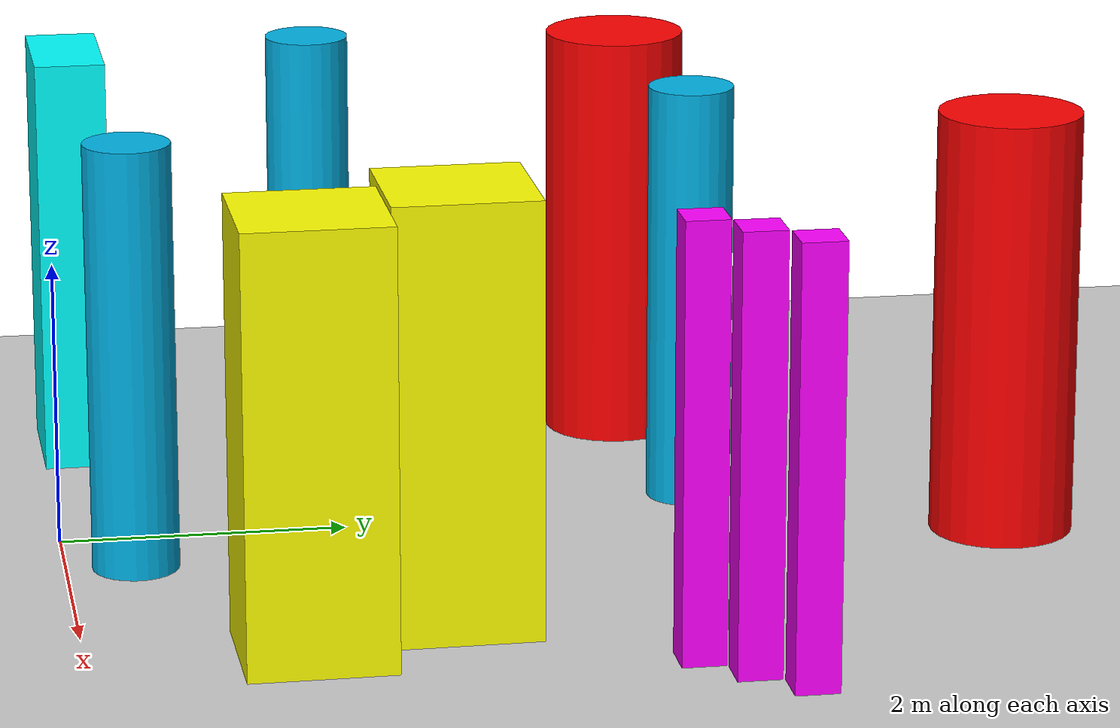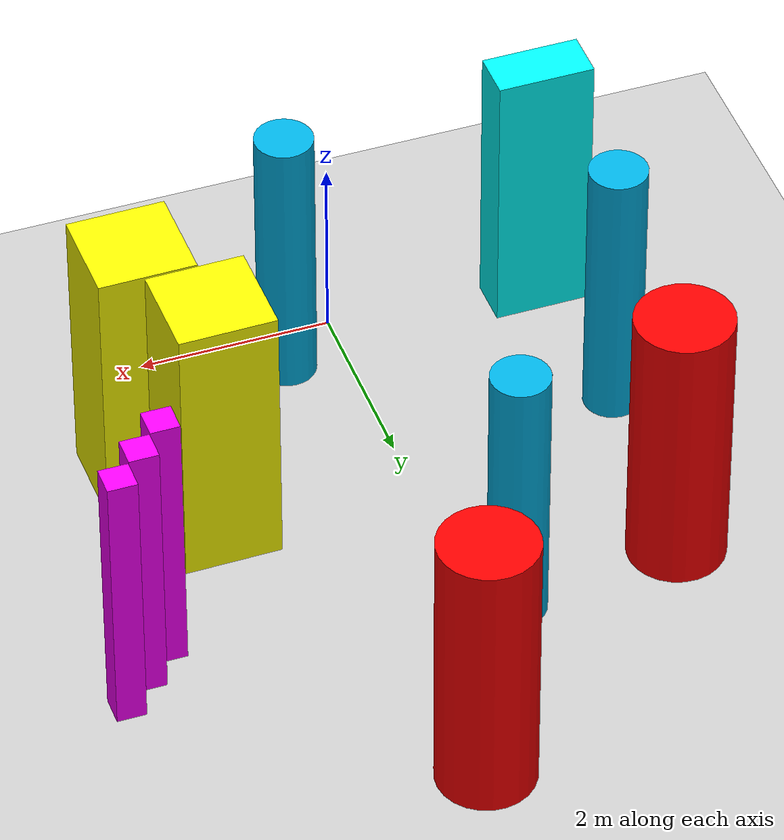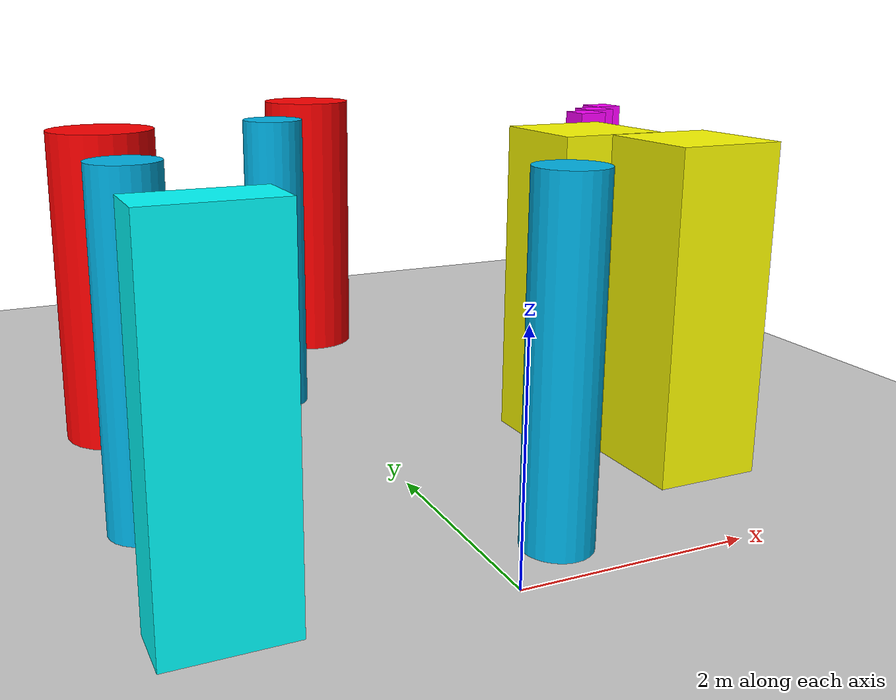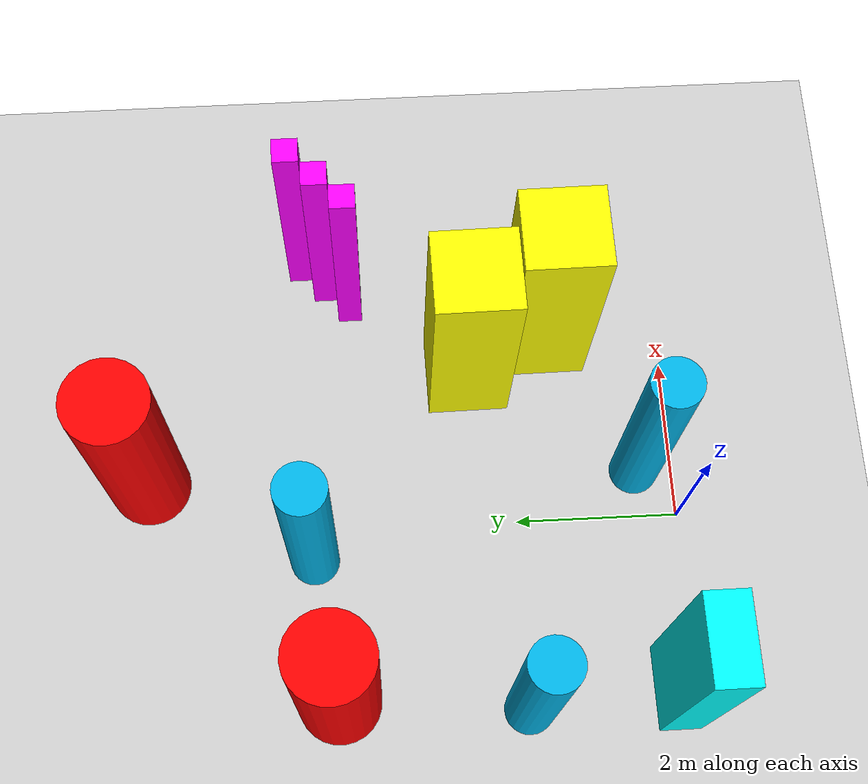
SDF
<sdf version="1.6">
 <world name="default">
  <model name="ground_plane">
   <static>1</static>
   <link name="link">
    <collision name="collision">
     <geometry><plane><normal>0 0 1</normal><size>100 100</size></plane></geometry>
     <surface><friction><ode><mu>100</mu><mu2>50</mu2></ode></friction></surface>
    </collision>
    <visual name="visual">
     <cast_shadows>0</cast_shadows>
     <geometry><plane><normal>0 0 1</normal><size>100 100</size></plane></geometry>
     <material>
      <script><uri>file://media/materials/scripts/gazebo.material</uri><name>Gazebo/Grey</name></script>
     </material>
    </visual>
   </link>
  </model>
  <model name="orange_tall_box">
   <link name="link">
    <pose>-0.180811 0.689421 1.5 0 -0 0</pose>
    <inertial>
     <mass>100</mass>
     <inertia>
      <ixx>0.166667</ixx>
      <ixy>0</ixy>
      <ixz>0</ixz>
      <iyy>0.166667</iyy>
      <iyz>0</iyz>
      <izz>0.166667</izz>
     </inertia>
    </inertial>
    <visual name="visual">
     <geometry><box><size>1 1 3</size></box></geometry>
     <material>
      <script><name>Gazebo/Grey</name><uri>file://media/materials/scripts/gazebo.material</uri></script>
      <shader type="pixel"><normal_map>__default__</normal_map></shader>
      <ambient>1 1 0 1</ambient>
      <diffuse>1 1 0 1</diffuse>
      <specular>0.5 0.5 0 1</specular>
      <emissive>0 0 0 1</emissive>
     </material>
    </visual>
    <collision name="collision">
     <geometry><box><size>1 1 3</size></box></geometry>
     <surface>
      <friction>
       <ode><mu>1</mu><mu2>1</mu2><fdir1>0 0 0</fdir1><slip1>0</slip1><slip2>0</slip2></ode>
       <torsional>
        <coefficient>1</coefficient>
        <patch_radius>0</patch_radius>
        <surface_radius>0</surface_radius>
        <use_patch_radius>1</use_patch_radius>
        <ode><slip>0</slip></ode>
       </torsional>
      </friction>
      <bounce><restitution_coefficient>0</restitution_coefficient><threshold>1e+06</threshold></bounce>
      <contact>
       <collide_without_contact>0</collide_without_contact>
       <collide_without_contact_bitmask>1</collide_without_contact_bitmask>
       <collide_bitmask>1</collide_bitmask>
       <ode>
        <soft_cfm>0</soft_cfm>
        <soft_erp>0.2</soft_erp>
        <kp>1e+13</kp>
        <kd>1</kd>
        <max_vel>0.01</max_vel>
        <min_depth>0</min_depth>
       </ode>
       <bullet>
        <split_impulse>1</split_impulse>
        <split_impulse_penetration_threshold>-0.01</split_impulse_penetration_threshold>
        <soft_cfm>0</soft_cfm>
        <soft_erp>0.2</soft_erp>
        <kp>1e+13</kp>
        <kd>1</kd>
       </bullet>
      </contact>
     </surface>
    </collision>
   </link>
   <static>0</static>
   <pose>2.20981 1.82485 -9e-06 -0 1.2e-05 0.01223</pose>
  </model>
  <model name="tall_fat_red_cyl">
   <link name="link">
    <pose>0 0 1.5 0 -0 0</pose>
    <inertial>
     <mass>100</mass>
     <inertia><ixx>0.145833</ixx><ixy>0</ixy><ixz>0</ixz><iyy>0.145833</iyy><iyz>0</iyz><izz>0.125</izz></inertia>
    </inertial>
    <visual name="visual">
     <geometry><cylinder><radius>0.5</radius><length>3</length></cylinder></geometry>
     <material>
      <script><name>Gazebo/Grey</name><uri>file://media/materials/scripts/gazebo.material</uri></script>
      <shader type="pixel"><normal_map>__default__</normal_map></shader>
      <ambient>1 0 0 1</ambient>
      <diffuse>1 0 0 1</diffuse>
      <specular>0.5 0 0 1</specular>
      <emissive>0 0 0 1</emissive>
     </material>
    </visual>
    <collision name="collision">
     <geometry><cylinder><radius>0.5</radius><length>3</length></cylinder></geometry>
     <surface>
      <friction>
       <ode><mu>1</mu><mu2>1</mu2><fdir1>0 0 0</fdir1><slip1>0</slip1><slip2>0</slip2></ode>
       <torsional>
        <coefficient>1</coefficient>
        <patch_radius>0</patch_radius>
        <surface_radius>0</surface_radius>
        <use_patch_radius>1</use_patch_radius>
        <ode><slip>0</slip></ode>
       </torsional>
      </friction>
      <bounce><restitution_coefficient>0</restitution_coefficient><threshold>1e+06</threshold></bounce>
      <contact>
       <collide_without_contact>0</collide_without_contact>
       <collide_without_contact_bitmask>1</collide_without_contact_bitmask>
       <collide_bitmask>1</collide_bitmask>
       <ode>
        <soft_cfm>0</soft_cfm>
        <soft_erp>0.2</soft_erp>
        <kp>1e+13</kp>
        <kd>1</kd>
        <max_vel>0.01</max_vel>
        <min_depth>0</min_depth>
       </ode>
       <bullet>
        <split_impulse>1</split_impulse>
        <split_impulse_penetration_threshold>-0.01</split_impulse_penetration_threshold>
        <soft_cfm>0</soft_cfm>
        <soft_erp>0.2</soft_erp>
        <kp>1e+13</kp>
        <kd>1</kd>
       </bullet>
      </contact>
     </surface>
    </collision>
   </link>
   <static>0</static>
   <pose>0.691746 6.54631 -1e-06 5e-06 6e-06 0.051233</pose>
  </model>
  <model name="orange_tall_box_clone">
   <link name="link">
    <pose>-0.180811 0.689421 1.5 0 -0 0</pose>
    <inertial>
     <mass>100</mass>
     <inertia>
      <ixx>0.166667</ixx>
      <ixy>0</ixy>
      <ixz>0</ixz>
      <iyy>0.166667</iyy>
      <iyz>0</iyz>
      <izz>0.166667</izz>
     </inertia>
    </inertial>
    <visual name="visual">
     <geometry><box><size>1 1 3</size></box></geometry>
     <material>
      <script><name>Gazebo/Grey</name><uri>file://media/materials/scripts/gazebo.material</uri></script>
      <shader type="pixel"><normal_map>__default__</normal_map></shader>
      <ambient>1 1 0 1</ambient>
      <diffuse>1 1 0 1</diffuse>
      <specular>0.5 0.5 0 1</specular>
      <emissive>0 0 0 1</emissive>
     </material>
    </visual>
    <collision name="collision">
     <geometry><box><size>1 1 3</size></box></geometry>
     <surface>
      <friction>
       <ode><mu>1</mu><mu2>1</mu2><fdir1>0 0 0</fdir1><slip1>0</slip1><slip2>0</slip2></ode>
       <torsional>
        <coefficient>1</coefficient>
        <patch_radius>0</patch_radius>
        <surface_radius>0</surface_radius>
        <use_patch_radius>1</use_patch_radius>
        <ode><slip>0</slip></ode>
       </torsional>
      </friction>
      <bounce><restitution_coefficient>0</restitution_coefficient><threshold>1e+06</threshold></bounce>
      <contact>
       <collide_without_contact>0</collide_without_contact>
       <collide_without_contact_bitmask>1</collide_without_contact_bitmask>
       <collide_bitmask>1</collide_bitmask>
       <ode>
        <soft_cfm>0</soft_cfm>
        <soft_erp>0.2</soft_erp>
        <kp>1e+13</kp>
        <kd>1</kd>
        <max_vel>0.01</max_vel>
        <min_depth>0</min_depth>
       </ode>
       <bullet>
        <split_impulse>1</split_impulse>
        <split_impulse_penetration_threshold>-0.01</split_impulse_penetration_threshold>
        <soft_cfm>0</soft_cfm>
        <soft_erp>0.2</soft_erp>
        <kp>1e+13</kp>
        <kd>1</kd>
       </bullet>
      </contact>
     </surface>
    </collision>
   </link>
   <static>0</static>
   <pose>1.80373 1.30672 -9e-06 -1e-06 1.2e-05 -1.5612</pose>
  </model>
  <model name="cyl_tall_green_clone">
   <link name="link">
    <inertial>
     <mass>1</mass>
     <inertia><ixx>0.145833</ixx><ixy>0</ixy><ixz>0</ixz><iyy>0.145833</iyy><iyz>0</iyz><izz>0.125</izz></inertia>
    </inertial>
    <visual name="visual">
     <geometry><cylinder><radius>0.3</radius><length>3</length></cylinder></geometry>
     <material>
      <script><name>Gazebo/Grey</name><uri>file://media/materials/scripts/gazebo.material</uri></script>
      <shader type="pixel"><normal_map>__default__</normal_map></shader>
      <ambient>0 1 1 1</ambient>
      <diffuse>0 0.7 0.9 1</diffuse>
      <specular>0 0.01 0.03 1</specular>
      <emissive>0 0 0 1</emissive>
     </material>
    </visual>
    <collision name="collision">
     <geometry><cylinder><radius>0.3</radius><length>3</length></cylinder></geometry>
     <surface>
      <friction>
       <ode><mu>1</mu><mu2>1</mu2><fdir1>0 0 0</fdir1><slip1>0</slip1><slip2>0</slip2></ode>
       <torsional>
        <coefficient>1</coefficient>
        <patch_radius>0</patch_radius>
        <surface_radius>0</surface_radius>
        <use_patch_radius>1</use_patch_radius>
        <ode><slip>0</slip></ode>
       </torsional>
      </friction>
      <bounce><restitution_coefficient>0</restitution_coefficient><threshold>1e+06</threshold></bounce>
      <contact>
       <collide_without_contact>0</collide_without_contact>
       <collide_without_contact_bitmask>1</collide_without_contact_bitmask>
       <collide_bitmask>1</collide_bitmask>
       <ode>
        <soft_cfm>0</soft_cfm>
        <soft_erp>0.2</soft_erp>
        <kp>1e+13</kp>
        <kd>1</kd>
        <max_vel>0.01</max_vel>
        <min_depth>0</min_depth>
       </ode>
       <bullet>
        <split_impulse>1</split_impulse>
        <split_impulse_penetration_threshold>-0.01</split_impulse_penetration_threshold>
        <soft_cfm>0</soft_cfm>
        <soft_erp>0.2</soft_erp>
        <kp>1e+13</kp>
        <kd>1</kd>
       </bullet>
      </contact>
     </surface>
    </collision>
   </link>
   <static>0</static>
   <pose>0.600657 0.482827 1.5 0 0 -2.15732</pose>
  </model>
  <model name="tall_fat_red_cyl_clone">
   <link name="link">
    <pose>0 0 1.5 0 -0 0</pose>
    <inertial>
     <mass>100</mass>
     <inertia><ixx>0.145833</ixx><ixy>0</ixy><ixz>0</ixz><iyy>0.145833</iyy><iyz>0</iyz><izz>0.125</izz></inertia>
    </inertial>
    <visual name="visual">
     <geometry><cylinder><radius>0.5</radius><length>3</length></cylinder></geometry>
     <material>
      <script><name>Gazebo/Grey</name><uri>file://media/materials/scripts/gazebo.material</uri></script>
      <shader type="pixel"><normal_map>__default__</normal_map></shader>
      <ambient>1 0 0 1</ambient>
      <diffuse>1 0 0 1</diffuse>
      <specular>0.5 0 0 1</specular>
      <emissive>0 0 0 1</emissive>
     </material>
    </visual>
    <collision name="collision">
     <geometry><cylinder><radius>0.5</radius><length>3</length></cylinder></geometry>
     <surface>
      <friction>
       <ode><mu>1</mu><mu2>1</mu2><fdir1>0 0 0</fdir1><slip1>0</slip1><slip2>0</slip2></ode>
       <torsional>
        <coefficient>1</coefficient>
        <patch_radius>0</patch_radius>
        <surface_radius>0</surface_radius>
        <use_patch_radius>1</use_patch_radius>
        <ode><slip>0</slip></ode>
       </torsional>
      </friction>
      <bounce><restitution_coefficient>0</restitution_coefficient><threshold>1e+06</threshold></bounce>
      <contact>
       <collide_without_contact>0</collide_without_contact>
       <collide_without_contact_bitmask>1</collide_without_contact_bitmask>
       <collide_bitmask>1</collide_bitmask>
       <ode>
        <soft_cfm>0</soft_cfm>
        <soft_erp>0.2</soft_erp>
        <kp>1e+13</kp>
        <kd>1</kd>
        <max_vel>0.01</max_vel>
        <min_depth>0</min_depth>
       </ode>
       <bullet>
        <split_impulse>1</split_impulse>
        <split_impulse_penetration_threshold>-0.01</split_impulse_penetration_threshold>
        <soft_cfm>0</soft_cfm>
        <soft_erp>0.2</soft_erp>
        <kp>1e+13</kp>
        <kd>1</kd>
       </bullet>
      </contact>
     </surface>
    </collision>
   </link>
   <static>0</static>
   <pose>-2.12739 4.27453 -8e-06 4e-06 6e-06 0.067253</pose>
  </model>
  <model name="tall_narrow_cyan_box">
   <link name="link">
    <pose>0 -0 1.5 0 -0 0</pose>
    <inertial>
     <mass>1</mass>
     <inertia>
      <ixx>0.166667</ixx>
      <ixy>0</ixy>
      <ixz>0</ixz>
      <iyy>0.166667</iyy>
      <iyz>0</iyz>
      <izz>0.166667</izz>
     </inertia>
    </inertial>
    <visual name="visual">
     <geometry><box><size>1 0.5 3</size></box></geometry>
     <material>
      <script><name>Gazebo/Grey</name><uri>file://media/materials/scripts/gazebo.material</uri></script>
      <shader type="pixel"><normal_map>__default__</normal_map></shader>
      <ambient>0.3 1 1 1</ambient>
      <diffuse>0 1 1 1</diffuse>
      <specular>0 0.5 0.5 1</specular>
      <emissive>0 0 0 1</emissive>
     </material>
    </visual>
    <collision name="collision">
     <geometry><box><size>1 0.5 3</size></box></geometry>
     <surface>
      <friction>
       <ode><mu>1</mu><mu2>1</mu2><fdir1>0 0 0</fdir1><slip1>0</slip1><slip2>0</slip2></ode>
       <torsional>
        <coefficient>1</coefficient>
        <patch_radius>0</patch_radius>
        <surface_radius>0</surface_radius>
        <use_patch_radius>1</use_patch_radius>
        <ode><slip>0</slip></ode>
       </torsional>
      </friction>
      <bounce><restitution_coefficient>0</restitution_coefficient><threshold>1e+06</threshold></bounce>
      <contact>
       <collide_without_contact>0</collide_without_contact>
       <collide_without_contact_bitmask>1</collide_without_contact_bitmask>
       <collide_bitmask>1</collide_bitmask>
       <ode>
        <soft_cfm>0</soft_cfm>
        <soft_erp>0.2</soft_erp>
        <kp>1e+13</kp>
        <kd>1</kd>
        <max_vel>0.01</max_vel>
        <min_depth>0</min_depth>
       </ode>
       <bullet>
        <split_impulse>1</split_impulse>
        <split_impulse_penetration_threshold>-0.01</split_impulse_penetration_threshold>
        <soft_cfm>0</soft_cfm>
        <soft_erp>0.2</soft_erp>
        <kp>1e+13</kp>
        <kd>1</kd>
       </bullet>
      </contact>
     </surface>
    </collision>
   </link>
   <static>0</static>
   <pose>-2.1456 0.258525 0 0 0 -3.1377</pose>
  </model>
  <model name="tall_skinny_purple_box">
   <link name="link">
    <pose>0 0 1.5 0 -0 0</pose>
    <inertial>
     <mass>1</mass>
     <inertia>
      <ixx>0.166667</ixx>
      <ixy>0</ixy>
      <ixz>0</ixz>
      <iyy>0.166667</iyy>
      <iyz>0</iyz>
      <izz>0.166667</izz>
     </inertia>
    </inertial>
    <visual name="visual">
     <geometry><box><size>0.3 0.3 3</size></box></geometry>
     <material>
      <script><name>Gazebo/Grey</name><uri>file://media/materials/scripts/gazebo.material</uri></script>
      <shader type="pixel"><normal_map>__default__</normal_map></shader>
      <ambient>1 0 1 1</ambient>
      <diffuse>1 0 1 1</diffuse>
      <specular>0.5 0 0.5 1</specular>
      <emissive>0 0 0 1</emissive>
     </material>
    </visual>
    <collision name="collision">
     <geometry><box><size>0.3 0.3 3</size></box></geometry>
     <surface>
      <friction>
       <ode><mu>1</mu><mu2>1</mu2><fdir1>0 0 0</fdir1><slip1>0</slip1><slip2>0</slip2></ode>
       <torsional>
        <coefficient>1</coefficient>
        <patch_radius>0</patch_radius>
        <surface_radius>0</surface_radius>
        <use_patch_radius>1</use_patch_radius>
        <ode><slip>0</slip></ode>
       </torsional>
      </friction>
      <bounce><restitution_coefficient>0</restitution_coefficient><threshold>1e+06</threshold></bounce>
      <contact>
       <collide_without_contact>0</collide_without_contact>
       <collide_without_contact_bitmask>1</collide_without_contact_bitmask>
       <collide_bitmask>1</collide_bitmask>
       <ode>
        <soft_cfm>0</soft_cfm>
        <soft_erp>0.2</soft_erp>
        <kp>1e+13</kp>
        <kd>1</kd>
        <max_vel>0.01</max_vel>
        <min_depth>0</min_depth>
       </ode>
       <bullet>
        <split_impulse>1</split_impulse>
        <split_impulse_penetration_threshold>-0.01</split_impulse_penetration_threshold>
        <soft_cfm>0</soft_cfm>
        <soft_erp>0.2</soft_erp>
        <kp>1e+13</kp>
        <kd>1</kd>
       </bullet>
      </contact>
     </surface>
    </collision>
   </link>
   <static>0</static>
   <pose>3.00096 3.95939 0 1e-06 -1e-06 0.000711</pose>
  </model>
  <model name="cyl_tall_green_clone_0">
   <link name="link">
    <inertial>
     <mass>1</mass>
     <inertia><ixx>0.145833</ixx><ixy>0</ixy><ixz>0</ixz><iyy>0.145833</iyy><iyz>0</iyz><izz>0.125</izz></inertia>
    </inertial>
    <visual name="visual">
     <geometry><cylinder><radius>0.3</radius><length>3</length></cylinder></geometry>
     <material>
      <script><name>Gazebo/Grey</name><uri>file://media/materials/scripts/gazebo.material</uri></script>
      <shader type="pixel"><normal_map>__default__</normal_map></shader>
      <ambient>0 1 1 1</ambient>
      <diffuse>0 0.7 0.9 1</diffuse>
      <specular>0 0.01 0.03 1</specular>
      <emissive>0 0 0 1</emissive>
     </material>
    </visual>
    <collision name="collision">
     <geometry><cylinder><radius>0.3</radius><length>3</length></cylinder></geometry>
     <surface>
      <friction>
       <ode><mu>1</mu><mu2>1</mu2><fdir1>0 0 0</fdir1><slip1>0</slip1><slip2>0</slip2></ode>
       <torsional>
        <coefficient>1</coefficient>
        <patch_radius>0</patch_radius>
        <surface_radius>0</surface_radius>
        <use_patch_radius>1</use_patch_radius>
        <ode><slip>0</slip></ode>
       </torsional>
      </friction>
      <bounce><restitution_coefficient>0</restitution_coefficient><threshold>1e+06</threshold></bounce>
      <contact>
       <collide_without_contact>0</collide_without_contact>
       <collide_without_contact_bitmask>1</collide_without_contact_bitmask>
       <collide_bitmask>1</collide_bitmask>
       <ode>
        <soft_cfm>0</soft_cfm>
        <soft_erp>0.2</soft_erp>
        <kp>1e+13</kp>
        <kd>1</kd>
        <max_vel>0.01</max_vel>
        <min_depth>0</min_depth>
       </ode>
       <bullet>
        <split_impulse>1</split_impulse>
        <split_impulse_penetration_threshold>-0.01</split_impulse_penetration_threshold>
        <soft_cfm>0</soft_cfm>
        <soft_erp>0.2</soft_erp>
        <kp>1e+13</kp>
        <kd>1</kd>
       </bullet>
      </contact>
     </surface>
    </collision>
   </link>
   <static>0</static>
   <pose>-2.31821 2.02794 1.5 0 -0 0.000695</pose>
  </model>
  <model name="cyl_tall_green_clone_1">
   <link name="link">
    <inertial>
     <mass>1</mass>
     <inertia><ixx>0.145833</ixx><ixy>0</ixy><ixz>0</ixz><iyy>0.145833</iyy><iyz>0</iyz><izz>0.125</izz></inertia>
    </inertial>
    <visual name="visual">
     <geometry><cylinder><radius>0.3</radius><length>3</length></cylinder></geometry>
     <material>
      <script><name>Gazebo/Grey</name><uri>file://media/materials/scripts/gazebo.material</uri></script>
      <shader type="pixel"><normal_map>__default__</normal_map></shader>
      <ambient>0 1 1 1</ambient>
      <diffuse>0 0.7 0.9 1</diffuse>
      <specular>0 0.01 0.03 1</specular>
      <emissive>0 0 0 1</emissive>
     </material>
    </visual>
    <collision name="collision">
     <geometry><cylinder><radius>0.3</radius><length>3</length></cylinder></geometry>
     <surface>
      <friction>
       <ode><mu>1</mu><mu2>1</mu2><fdir1>0 0 0</fdir1><slip1>0</slip1><slip2>0</slip2></ode>
       <torsional>
        <coefficient>1</coefficient>
        <patch_radius>0</patch_radius>
        <surface_radius>0</surface_radius>
        <use_patch_radius>1</use_patch_radius>
        <ode><slip>0</slip></ode>
       </torsional>
      </friction>
      <bounce><restitution_coefficient>0</restitution_coefficient><threshold>1e+06</threshold></bounce>
      <contact>
       <collide_without_contact>0</collide_without_contact>
       <collide_without_contact_bitmask>1</collide_without_contact_bitmask>
       <collide_bitmask>1</collide_bitmask>
       <ode>
        <soft_cfm>0</soft_cfm>
        <soft_erp>0.2</soft_erp>
        <kp>1e+13</kp>
        <kd>1</kd>
        <max_vel>0.01</max_vel>
        <min_depth>0</min_depth>
       </ode>
       <bullet>
        <split_impulse>1</split_impulse>
        <split_impulse_penetration_threshold>-0.01</split_impulse_penetration_threshold>
        <soft_cfm>0</soft_cfm>
        <soft_erp>0.2</soft_erp>
        <kp>1e+13</kp>
        <kd>1</kd>
       </bullet>
      </contact>
     </surface>
    </collision>
   </link>
   <static>0</static>
   <pose>-0.374964 4.5172 1.49999 0 -0 0.000696</pose>
  </model>
  <model name="tall_skinny_purple_box_clone_1">
   <link name="link">
    <pose>0 0 1.5 0 -0 0</pose>
    <inertial>
     <mass>1</mass>
     <inertia>
      <ixx>0.166667</ixx>
      <ixy>0</ixy>
      <ixz>0</ixz>
      <iyy>0.166667</iyy>
      <iyz>0</iyz>
      <izz>0.166667</izz>
     </inertia>
    </inertial>
    <visual name="visual">
     <geometry><box><size>0.3 0.3 3</size></box></geometry>
     <material>
      <script><name>Gazebo/Grey</name><uri>file://media/materials/scripts/gazebo.material</uri></script>
      <shader type="pixel"><normal_map>__default__</normal_map></shader>
      <ambient>1 0 1 1</ambient>
      <diffuse>1 0 1 1</diffuse>
      <specular>0.5 0 0.5 1</specular>
      <emissive>0 0 0 1</emissive>
     </material>
    </visual>
    <collision name="collision">
     <geometry><box><size>0.3 0.3 3</size></box></geometry>
     <surface>
      <friction>
       <ode><mu>1</mu><mu2>1</mu2><fdir1>0 0 0</fdir1><slip1>0</slip1><slip2>0</slip2></ode>
       <torsional>
        <coefficient>1</coefficient>
        <patch_radius>0</patch_radius>
        <surface_radius>0</surface_radius>
        <use_patch_radius>1</use_patch_radius>
        <ode><slip>0</slip></ode>
       </torsional>
      </friction>
      <bounce><restitution_coefficient>0</restitution_coefficient><threshold>1e+06</threshold></bounce>
      <contact>
       <collide_without_contact>0</collide_without_contact>
       <collide_without_contact_bitmask>1</collide_without_contact_bitmask>
       <collide_bitmask>1</collide_bitmask>
       <ode>
        <soft_cfm>0</soft_cfm>
        <soft_erp>0.2</soft_erp>
        <kp>1e+13</kp>
        <kd>1</kd>
        <max_vel>0.01</max_vel>
        <min_depth>0</min_depth>
       </ode>
       <bullet>
        <split_impulse>1</split_impulse>
        <split_impulse_penetration_threshold>-0.01</split_impulse_penetration_threshold>
        <soft_cfm>0</soft_cfm>
        <soft_erp>0.2</soft_erp>
        <kp>1e+13</kp>
        <kd>1</kd>
       </bullet>
      </contact>
     </surface>
    </collision>
   </link>
   <static>0</static>
   <pose>3.30789 4.26579 0 3e-06 1e-06 0.00068</pose>
  </model>
  <model name="tall_skinny_purple_box_clone_2">
   <link name="link">
    <pose>0 0 1.5 0 -0 0</pose>
    <inertial>
     <mass>1</mass>
     <inertia>
      <ixx>0.166667</ixx>
      <ixy>0</ixy>
      <ixz>0</ixz>
      <iyy>0.166667</iyy>
      <iyz>0</iyz>
      <izz>0.166667</izz>
     </inertia>
    </inertial>
    <visual name="visual">
     <geometry><box><size>0.3 0.3 3</size></box></geometry>
     <material>
      <script><name>Gazebo/Grey</name><uri>file://media/materials/scripts/gazebo.material</uri></script>
      <shader type="pixel"><normal_map>__default__</normal_map></shader>
      <ambient>1 0 1 1</ambient>
      <diffuse>1 0 1 1</diffuse>
      <specular>0.5 0 0.5 1</specular>
      <emissive>0 0 0 1</emissive>
     </material>
    </visual>
    <collision name="collision">
     <geometry><box><size>0.3 0.3 3</size></box></geometry>
     <surface>
      <friction>
       <ode><mu>1</mu><mu2>1</mu2><fdir1>0 0 0</fdir1><slip1>0</slip1><slip2>0</slip2></ode>
       <torsional>
        <coefficient>1</coefficient>
        <patch_radius>0</patch_radius>
        <surface_radius>0</surface_radius>
        <use_patch_radius>1</use_patch_radius>
        <ode><slip>0</slip></ode>
       </torsional>
      </friction>
      <bounce><restitution_coefficient>0</restitution_coefficient><threshold>1e+06</threshold></bounce>
      <contact>
       <collide_without_contact>0</collide_without_contact>
       <collide_without_contact_bitmask>1</collide_without_contact_bitmask>
       <collide_bitmask>1</collide_bitmask>
       <ode>
        <soft_cfm>0</soft_cfm>
        <soft_erp>0.2</soft_erp>
        <kp>1e+13</kp>
        <kd>1</kd>
        <max_vel>0.01</max_vel>
        <min_depth>0</min_depth>
       </ode>
       <bullet>
        <split_impulse>1</split_impulse>
        <split_impulse_penetration_threshold>-0.01</split_impulse_penetration_threshold>
        <soft_cfm>0</soft_cfm>
        <soft_erp>0.2</soft_erp>
        <kp>1e+13</kp>
        <kd>1</kd>
       </bullet>
      </contact>
     </surface>
    </collision>
   </link>
   <static>0</static>
   <pose>3.616 4.57932 2e-06 4e-06 7e-06 0.000216</pose>
  </model>
 </world>
</sdf>
